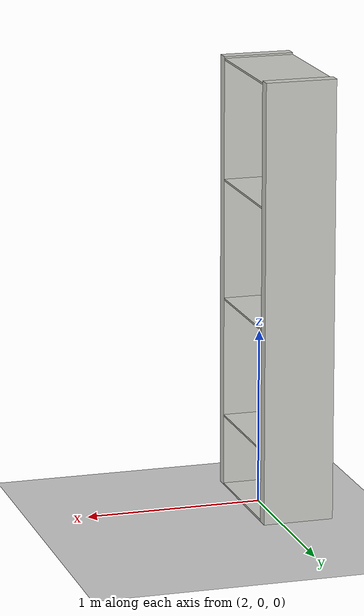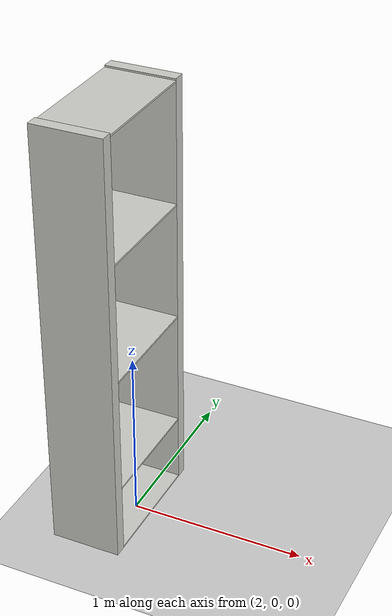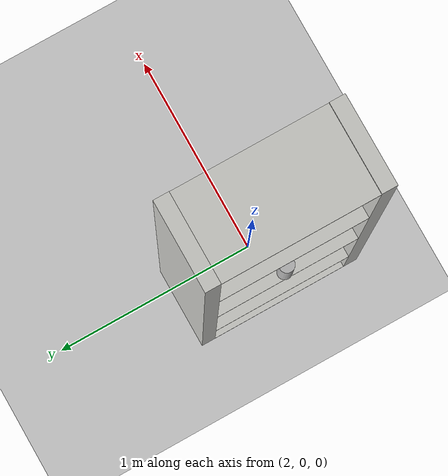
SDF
<?xml version="1.0" ?>
<sdf version="1.4">
  <!-- We use a custom world for the rrbot so that the camera angle is launched correctly -->

  <world name="default">

  <gravity>0 0 -9.81</gravity>

  <model name="ground_plane">
    <static>true</static>
    <link name="link">
      <collision name="collision">
        <geometry>
          <plane>
            <normal>0 0 1</normal>
            <size>100 100</size>
          </plane>
        </geometry>
        <surface>
          <friction>
            <ode>
              <mu>1</mu>
              <mu2>1</mu2>
            </ode>
          </friction>
        </surface>
      </collision>
      <visual name="visual">
        <cast_shadows>false</cast_shadows>
        <geometry>
          <plane>
            <normal>0 0 1</normal>
            <size>100 100</size>
          </plane>
        </geometry>
        <material>
          <script>
            <uri>file://media/materials/scripts/gazebo.material</uri>
            <name>Gazebo/Grey</name>
          </script>
        </material>
      </visual>
    </link>
  </model>

  <model name="shelf">
    <pose frame=''>2.1 0.0 0.0 0 0 -1.57</pose>
    <static>true</static>
    <link name="link">
      <inertial>
        <mass>1.0</mass>
      </inertial>
      <collision name="left_side">
        <pose>0.38 -0.2 1.25 0 0 0</pose>
        <geometry>
          <box>
            <size>0.07 0.4 2.5</size>
          </box>
        </geometry>
      </collision>
      <visual name="visual2">
        <pose>0.38 -0.2 1.25 0 0 0</pose>
        <geometry>
          <box>
            <size>0.07 0.4 2.5</size>
          </box>
        </geometry>
        <material>
          <script>
            <uri>file://media/materials/scripts/gazebo.material</uri>
            <name>Gazebo/CeilingTiled</name>
          </script>
        </material>
      </visual>
      <collision name="right_side">
        <pose>-0.38 -0.2 1.25 0 0 0</pose>
        <geometry>
          <box>
            <size>0.07 0.4 2.5</size>
          </box>
        </geometry>
      </collision>
      <visual name="visual3">
        <pose>-0.38 -0.2 1.25 0 0 0</pose>
        <geometry>
          <box>
            <size>0.07 0.4 2.5</size>
          </box>
        </geometry>
        <material>
          <script>
            <uri>file://media/materials/scripts/gazebo.material</uri>
            <name>Gazebo/CeilingTiled</name>
          </script>
        </material>
      </visual>
      <collision name="bottom">
        <pose>0 -0.2 0.005 0 0 0</pose>
        <geometry>
          <box>
            <size>0.69 0.4 0.01</size>
          </box>
        </geometry>
      </collision>
      <visual name="visual4">
        <pose>0 -0.2 0.005 0 0 0</pose>
        <geometry>
          <box>
            <size>0.69 0.4 0.01</size>
          </box>
        </geometry>
        <material>
          <script>
            <uri>file://media/materials/scripts/gazebo.material</uri>
            <name>Gazebo/CeilingTiled</name>
          </script>
        </material>
      </visual>
      <collision name="top">
        <pose>0 -0.2 2.485 0 0 0</pose>
        <geometry>
          <box>
            <size>0.69 0.4 0.01</size>
          </box>
        </geometry>
      </collision>
      <visual name="visual5">
        <pose>0 -0.2 2.485 0 0 0</pose>
        <geometry>
          <box>
            <size>0.69 0.4 0.01</size>
          </box>
        </geometry>
        <material>
          <script>
            <uri>file://media/materials/scripts/gazebo.material</uri>
            <name>Gazebo/CeilingTiled</name>
          </script>
        </material>
      </visual>
      <collision name="low_shelf">
        <pose>0 -0.2 0.415 0 0 0</pose>
        <geometry>
          <box>
            <size>0.69 0.4 0.01</size>
          </box>
        </geometry>
      </collision>
      <visual name="visual6">
        <pose>0 -0.2 0.415 0 0 0</pose>
        <geometry>
          <box>
            <size>0.69 0.4 0.01</size>
          </box>
        </geometry>
        <material>
          <script>
            <uri>file://media/materials/scripts/gazebo.material</uri>
            <name>Gazebo/CeilingTiled</name>
          </script>
        </material>
      </visual>
      <collision name="middle_shelf">
        <pose>0 -0.2 1.105 0 0 0</pose>
        <geometry>
          <box>
            <size>0.69 0.4 0.01</size>
          </box>
        </geometry>
      </collision>
      <visual name="visual7">
        <pose>0 -0.2 1.105 0 0 0</pose>
        <geometry>
          <box>
            <size>0.69 0.4 0.01</size>
          </box>
        </geometry>
        <material>
          <script>
            <uri>file://media/materials/scripts/gazebo.material</uri>
            <name>Gazebo/CeilingTiled</name>
          </script>
        </material>
      </visual>
      <collision name="high_shelf">
        <pose>0 -0.2 1.795 0 0 0</pose>
        <geometry>
          <box>
            <size>0.69 0.4 0.01</size>
          </box>
        </geometry>
      </collision>
      <visual name="visual8">
        <pose>0 -0.2 1.795 0 0 0</pose>
        <geometry>
          <box>
            <size>0.69 0.4 0.01</size>
          </box>
        </geometry>
        <material>
          <script>
            <uri>file://media/materials/scripts/gazebo.material</uri>
            <name>Gazebo/CeilingTiled</name>
          </script>
        </material>
      </visual>
    </link>
  </model>

  <model name='bottle'>
      <pose frame=''>1.73 0.0 1.11 0 0 0</pose>
      <link name='bottle'>
        <pose frame=''>0.0 0.0 0.135 0 0 0</pose>
        <inertial>
          <mass>0.05</mass>
          <inertia>
            <ixx>0.0001</ixx>
            <ixy>0.0</ixy>
            <ixz>0.0</ixz>
            <iyy>0.0001</iyy>
            <iyz>0.0</iyz>
            <izz>0.00001</izz>
          </inertia>
        </inertial>
        <collision name='bottle_Collision'>
          <geometry>
            <cylinder>
              <radius>0.035</radius>
              <length>0.27</length>
            </cylinder>
          </geometry>
        </collision>
        <visual name='bottle_Visual'>
          <geometry>
            <cylinder>
              <radius>0.035</radius>
              <length>0.27</length>
            </cylinder>
          </geometry>
        <material>
          <script>
            <uri>file://media/materials/scripts/gazebo.material</uri>
            <name>Gazebo/PioneerBody</name>
          </script>
        </material>
        </visual>
      </link>
  </model>

    <!-- Global light source -->
    <include>
      <uri>model://sun</uri>
    </include>

    <!-- Focus camera on tall pendulum -->
    <gui fullscreen='0'>
      <camera name='user_camera'>
        <pose>4.927360 -4.376610 3.740080 0.000000 0.275643 2.356190</pose>
        <view_controller>orbit</view_controller>
      </camera>
    </gui>

    <physics name="update_rate" type="ode">
      <real_time_update_rate>1000</real_time_update_rate>
      <max_step_size>0.001</max_step_size>
      <max_contacts>5</max_contacts>
      <bullet>
	<solver>
          <iters>100</iters>
          <sor>1.55</sor>
        </solver>
        <constraints>
          <contact_surface_layer>0.2</contact_surface_layer>
          <cfm>0.005</cfm>
          <erp>0.2</erp>
        </constraints>
      </bullet>
      <ode>
	<solver>
          <type>quick</type>
          <iters>50</iters>
          <sor>1.20</sor>
        </solver>
        <constraints>
          <contact_surface_layer>0.0002</contact_surface_layer>
          <contact_max_correcting_vel>500</contact_max_correcting_vel>
          <cfm>0.000001</cfm>
          <erp>0.3</erp>
        </constraints>
      </ode>
    </physics>

  </world>
</sdf>
